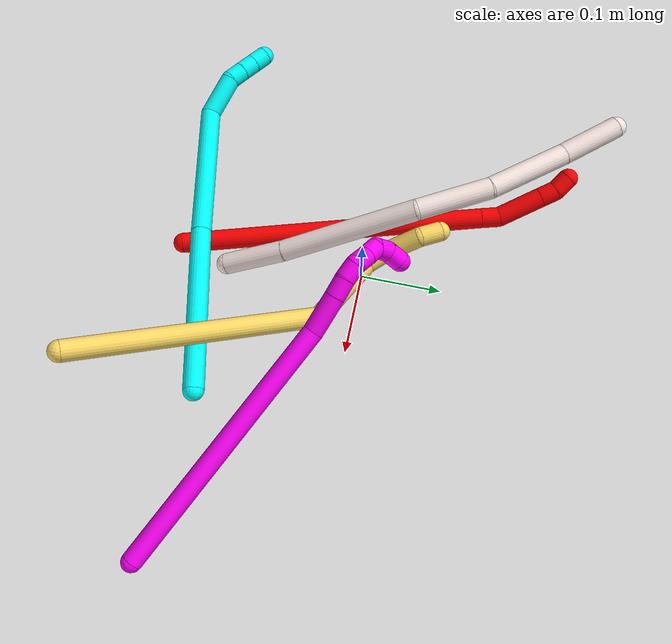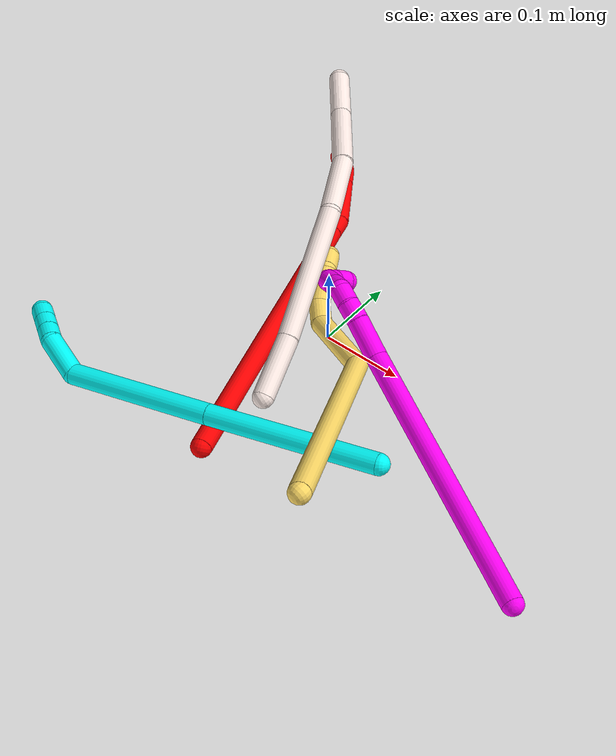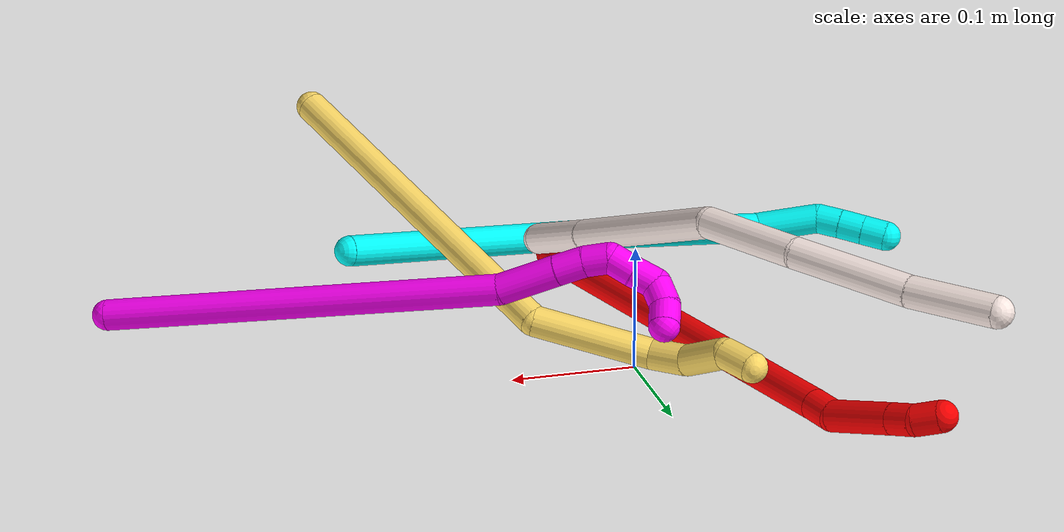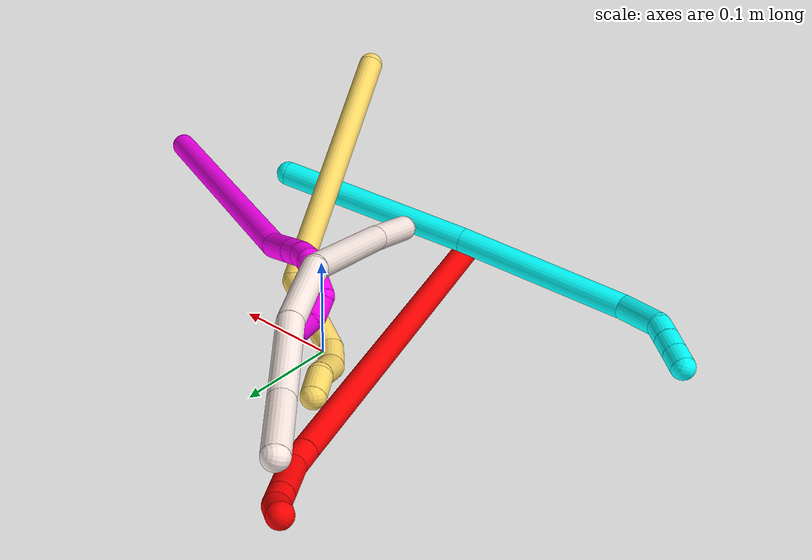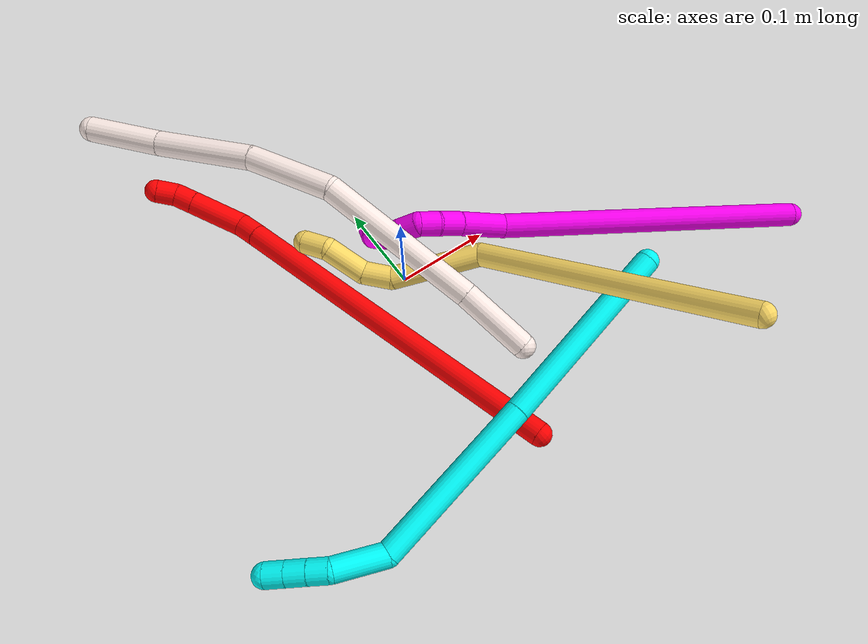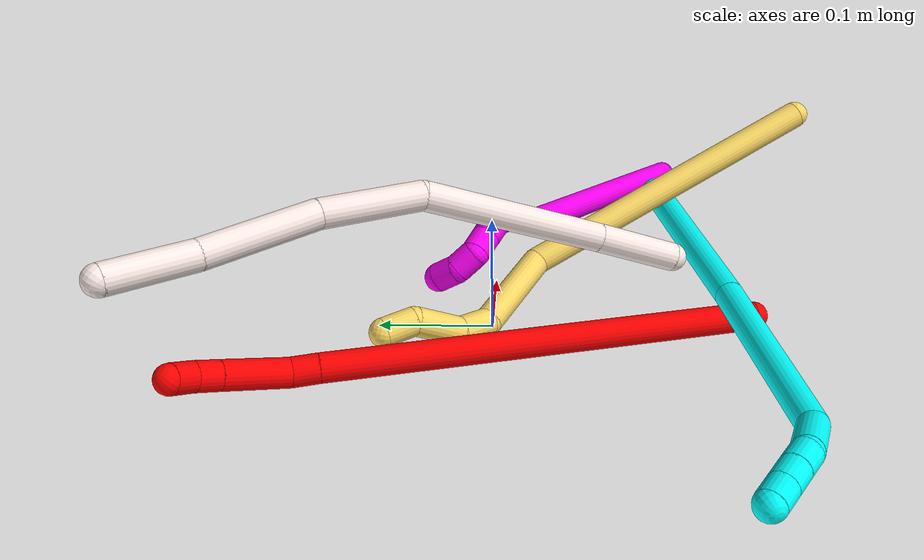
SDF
<sdf version="1.7">
 <world name="default">
  <model name="2">
   <static>0</static>
   <link name="2">
    <collision name="collision-cylinder-e_1_1_4">
     <pose>-0.039215 0.130053 0.130662 -0.783063 -0.209591 0.086792</pose>
     <geometry><cylinder><radius>0.0125</radius><length>0.376956</length></cylinder></geometry>
     <surface>
      <friction><ode><mu>1.16</mu><mu2>1.16</mu2><slip1>0</slip1><slip2>0</slip2></ode></friction>
      <contact><ode><kp>1e+06</kp><kd>1</kd><max_vel>0</max_vel><min_depth>0.001</min_depth></ode></contact>
     </surface>
    </collision>
    <visual name="visual-cylinder-e_1_1_4">
     <pose>-0.039215 0.130053 0.130662 -0.783063 -0.209591 0.086792</pose>
     <geometry><cylinder><radius>0.0125</radius><length>0.376956</length></cylinder></geometry>
     <material><ambient>1 0 0 1</ambient></material>
    </visual>
    <collision name="collision-cylinder-e_2_4_5">
     <pose>-0.080954 0.26849 0.269183 -0.817673 -0.216257 0.093991</pose>
     <geometry><cylinder><radius>0.0125</radius><length>0.023531</length></cylinder></geometry>
     <surface>
      <friction><ode><mu>1.16</mu><mu2>1.16</mu2><slip1>0</slip1><slip2>0</slip2></ode></friction>
      <contact><ode><kp>1e+06</kp><kd>1</kd><max_vel>0</max_vel><min_depth>0.001</min_depth></ode></contact>
     </surface>
    </collision>
    <visual name="visual-cylinder-e_2_4_5">
     <pose>-0.080954 0.26849 0.269183 -0.817673 -0.216257 0.093991</pose>
     <geometry><cylinder><radius>0.0125</radius><length>0.023531</length></cylinder></geometry>
     <material><ambient>1 0 0 1</ambient></material>
    </visual>
    <collision name="collision-cylinder-e_3_5_6">
     <pose>-0.094917 0.28834 0.300797 -0.44973 -0.409168 0.094847</pose>
     <geometry><cylinder><radius>0.0125</radius><length>0.057502</length></cylinder></geometry>
     <surface>
      <friction><ode><mu>1.16</mu><mu2>1.16</mu2><slip1>0</slip1><slip2>0</slip2></ode></friction>
      <contact><ode><kp>1e+06</kp><kd>1</kd><max_vel>0</max_vel><min_depth>0.001</min_depth></ode></contact>
     </surface>
    </collision>
    <visual name="visual-cylinder-e_3_5_6">
     <pose>-0.094917 0.28834 0.300797 -0.44973 -0.409168 0.094847</pose>
     <geometry><cylinder><radius>0.0125</radius><length>0.057502</length></cylinder></geometry>
     <material><ambient>1 0 0 1</ambient></material>
    </visual>
    <collision name="collision-cylinder-e_4_6_7">
     <pose>-0.11047 0.304019 0.333016 -0.461683 -0.410441 0.097766</pose>
     <geometry><cylinder><radius>0.0125</radius><length>0.020621</length></cylinder></geometry>
     <surface>
      <friction><ode><mu>1.16</mu><mu2>1.16</mu2><slip1>0</slip1><slip2>0</slip2></ode></friction>
      <contact><ode><kp>1e+06</kp><kd>1</kd><max_vel>0</max_vel><min_depth>0.001</min_depth></ode></contact>
     </surface>
    </collision>
    <visual name="visual-cylinder-e_4_6_7">
     <pose>-0.11047 0.304019 0.333016 -0.461683 -0.410441 0.097766</pose>
     <geometry><cylinder><radius>0.0125</radius><length>0.020621</length></cylinder></geometry>
     <material><ambient>1 0 0 1</ambient></material>
    </visual>
    <collision name="collision-cylinder-e_5_7_2">
     <pose>-0.121205 0.309784 0.349734 -0.186126 -0.667612 0.06471</pose>
     <geometry><cylinder><radius>0.0125</radius><length>0.021389</length></cylinder></geometry>
     <surface>
      <friction><ode><mu>1.16</mu><mu2>1.16</mu2><slip1>0</slip1><slip2>0</slip2></ode></friction>
      <contact><ode><kp>1e+06</kp><kd>1</kd><max_vel>0</max_vel><min_depth>0.001</min_depth></ode></contact>
     </surface>
    </collision>
    <visual name="visual-cylinder-e_5_7_2">
     <pose>-0.121205 0.309784 0.349734 -0.186126 -0.667612 0.06471</pose>
     <geometry><cylinder><radius>0.0125</radius><length>0.021389</length></cylinder></geometry>
     <material><ambient>1 0 0 1</ambient></material>
    </visual>
    <collision name="collision-sphere-2">
     <pose>-0.127826 0.311338 0.357987 0 -0 0</pose>
     <geometry><sphere><radius>0.0125</radius></sphere></geometry>
     <surface>
      <friction><ode><mu>1.16</mu><mu2>1.16</mu2><slip1>0</slip1><slip2>0</slip2></ode></friction>
      <contact><ode><kp>1e+06</kp><kd>1</kd><max_vel>0</max_vel><min_depth>0.001</min_depth></ode></contact>
     </surface>
    </collision>
    <visual name="visual-sphere-2">
     <pose>-0.127826 0.311338 0.357987 0 -0 0</pose>
     <geometry><sphere><radius>0.0125</radius></sphere></geometry>
     <material><ambient>1 0 0 1</ambient></material>
    </visual>
    <collision name="collision-sphere-7">
     <pose>-0.114584 0.30823 0.34148 0 -0 0</pose>
     <geometry><sphere><radius>0.0125</radius></sphere></geometry>
     <surface>
      <friction><ode><mu>1.16</mu><mu2>1.16</mu2><slip1>0</slip1><slip2>0</slip2></ode></friction>
      <contact><ode><kp>1e+06</kp><kd>1</kd><max_vel>0</max_vel><min_depth>0.001</min_depth></ode></contact>
     </surface>
    </collision>
    <visual name="visual-sphere-7">
     <pose>-0.114584 0.30823 0.34148 0 -0 0</pose>
     <geometry><sphere><radius>0.0125</radius></sphere></geometry>
     <material><ambient>1 0 0 1</ambient></material>
    </visual>
    <collision name="collision-sphere-6">
     <pose>-0.106356 0.299807 0.324552 0 -0 0</pose>
     <geometry><sphere><radius>0.0125</radius></sphere></geometry>
     <surface>
      <friction><ode><mu>1.16</mu><mu2>1.16</mu2><slip1>0</slip1><slip2>0</slip2></ode></friction>
      <contact><ode><kp>1e+06</kp><kd>1</kd><max_vel>0</max_vel><min_depth>0.001</min_depth></ode></contact>
     </surface>
    </collision>
    <visual name="visual-sphere-6">
     <pose>-0.106356 0.299807 0.324552 0 -0 0</pose>
     <geometry><sphere><radius>0.0125</radius></sphere></geometry>
     <material><ambient>1 0 0 1</ambient></material>
    </visual>
    <collision name="collision-sphere-5">
     <pose>-0.083479 0.276873 0.277042 0 -0 0</pose>
     <geometry><sphere><radius>0.0125</radius></sphere></geometry>
     <surface>
      <friction><ode><mu>1.16</mu><mu2>1.16</mu2><slip1>0</slip1><slip2>0</slip2></ode></friction>
      <contact><ode><kp>1e+06</kp><kd>1</kd><max_vel>0</max_vel><min_depth>0.001</min_depth></ode></contact>
     </surface>
    </collision>
    <visual name="visual-sphere-5">
     <pose>-0.083479 0.276873 0.277042 0 -0 0</pose>
     <geometry><sphere><radius>0.0125</radius></sphere></geometry>
     <material><ambient>1 0 0 1</ambient></material>
    </visual>
    <collision name="collision-sphere-1">
     <geometry><sphere><radius>0.0125</radius></sphere></geometry>
     <surface>
      <friction><ode><mu>1.16</mu><mu2>1.16</mu2><slip1>0</slip1><slip2>0</slip2></ode></friction>
      <contact><ode><kp>1e+06</kp><kd>1</kd><max_vel>0</max_vel><min_depth>0.001</min_depth></ode></contact>
     </surface>
    </collision>
    <visual name="visual-sphere-1">
     <geometry><sphere><radius>0.0125</radius></sphere></geometry>
     <material><ambient>1 0 0 1</ambient></material>
    </visual>
    <collision name="collision-sphere-4">
     <pose>-0.078429 0.260106 0.261323 0 -0 0</pose>
     <geometry><sphere><radius>0.0125</radius></sphere></geometry>
     <surface>
      <friction><ode><mu>1.16</mu><mu2>1.16</mu2><slip1>0</slip1><slip2>0</slip2></ode></friction>
      <contact><ode><kp>1e+06</kp><kd>1</kd><max_vel>0</max_vel><min_depth>0.001</min_depth></ode></contact>
     </surface>
    </collision>
    <visual name="visual-sphere-4">
     <pose>-0.078429 0.260106 0.261323 0 -0 0</pose>
     <geometry><sphere><radius>0.0125</radius></sphere></geometry>
     <material><ambient>1 0 0 1</ambient></material>
    </visual>
    <inertial>
     <pose>-0.054031 0.169635 0.174464 0 -0 0</pose>
     <mass>0.5</mass>
     <inertia>
      <ixx>0.004757</ixx>
      <ixy>0</ixy>
      <ixz>0</ixz>
      <iyy>0.003646</iyy>
      <iyz>0</iyz>
      <izz>-0.002131</izz>
     </inertia>
    </inertial>
   </link>
   <pose>0.004732 -0.227502 0.011497 -0.728358 -0.262708 0.072572</pose>
  </model>
  <model name="3">
   <static>0</static>
   <link name="3">
    <collision name="collision-cylinder-e_1_1_4">
     <pose>-0.011237 -0.01058 0.101671 0.103687 -0.109486 -0.005687</pose>
     <geometry><cylinder><radius>0.0125</radius><length>0.205671</length></cylinder></geometry>
     <surface>
      <friction><ode><mu>1.16</mu><mu2>1.16</mu2><slip1>0</slip1><slip2>0</slip2></ode></friction>
      <contact><ode><kp>1e+06</kp><kd>1</kd><max_vel>0</max_vel><min_depth>0.001</min_depth></ode></contact>
     </surface>
    </collision>
    <visual name="visual-cylinder-e_1_1_4">
     <pose>-0.011237 -0.01058 0.101671 0.103687 -0.109486 -0.005687</pose>
     <geometry><cylinder><radius>0.0125</radius><length>0.205671</length></cylinder></geometry>
     <material><ambient>0.003922 1 0.996078 1</ambient></material>
    </visual>
    <collision name="collision-cylinder-e_2_4_5">
     <pose>-0.03199 -0.03312 0.292135 0.13389 -0.105821 -0.007101</pose>
     <geometry><cylinder><radius>0.0125</radius><length>0.1802</length></cylinder></geometry>
     <surface>
      <friction><ode><mu>1.16</mu><mu2>1.16</mu2><slip1>0</slip1><slip2>0</slip2></ode></friction>
      <contact><ode><kp>1e+06</kp><kd>1</kd><max_vel>0</max_vel><min_depth>0.001</min_depth></ode></contact>
     </surface>
    </collision>
    <visual name="visual-cylinder-e_2_4_5">
     <pose>-0.03199 -0.03312 0.292135 0.13389 -0.105821 -0.007101</pose>
     <geometry><cylinder><radius>0.0125</radius><length>0.1802</length></cylinder></geometry>
     <material><ambient>0.003922 1 0.996078 1</ambient></material>
    </visual>
    <collision name="collision-cylinder-e_3_5_6">
     <pose>-0.056341 -0.055739 0.400356 0.501825 -0.589955 -0.155444</pose>
     <geometry><cylinder><radius>0.0125</radius><length>0.053332</length></cylinder></geometry>
     <surface>
      <friction><ode><mu>1.16</mu><mu2>1.16</mu2><slip1>0</slip1><slip2>0</slip2></ode></friction>
      <contact><ode><kp>1e+06</kp><kd>1</kd><max_vel>0</max_vel><min_depth>0.001</min_depth></ode></contact>
     </surface>
    </collision>
    <visual name="visual-cylinder-e_3_5_6">
     <pose>-0.056341 -0.055739 0.400356 0.501825 -0.589955 -0.155444</pose>
     <geometry><cylinder><radius>0.0125</radius><length>0.053332</length></cylinder></geometry>
     <material><ambient>0.003922 1 0.996078 1</ambient></material>
    </visual>
    <collision name="collision-cylinder-e_4_6_7">
     <pose>-0.074827 -0.073808 0.425707 0.896368 -0.367305 -0.178147</pose>
     <geometry><cylinder><radius>0.0125</radius><length>0.020331</length></cylinder></geometry>
     <surface>
      <friction><ode><mu>1.16</mu><mu2>1.16</mu2><slip1>0</slip1><slip2>0</slip2></ode></friction>
      <contact><ode><kp>1e+06</kp><kd>1</kd><max_vel>0</max_vel><min_depth>0.001</min_depth></ode></contact>
     </surface>
    </collision>
    <visual name="visual-cylinder-e_4_6_7">
     <pose>-0.074827 -0.073808 0.425707 0.896368 -0.367305 -0.178147</pose>
     <geometry><cylinder><radius>0.0125</radius><length>0.020331</length></cylinder></geometry>
     <material><ambient>0.003922 1 0.996078 1</ambient></material>
    </visual>
    <collision name="collision-cylinder-e_5_7_8">
     <pose>-0.081858 -0.088764 0.437582 0.903092 -0.338258 -0.165248</pose>
     <geometry><cylinder><radius>0.0125</radius><length>0.020373</length></cylinder></geometry>
     <surface>
      <friction><ode><mu>1.16</mu><mu2>1.16</mu2><slip1>0</slip1><slip2>0</slip2></ode></friction>
      <contact><ode><kp>1e+06</kp><kd>1</kd><max_vel>0</max_vel><min_depth>0.001</min_depth></ode></contact>
     </surface>
    </collision>
    <visual name="visual-cylinder-e_5_7_8">
     <pose>-0.081858 -0.088764 0.437582 0.903092 -0.338258 -0.165248</pose>
     <geometry><cylinder><radius>0.0125</radius><length>0.020373</length></cylinder></geometry>
     <material><ambient>0.003922 1 0.996078 1</ambient></material>
    </visual>
    <collision name="collision-cylinder-e_6_8_2">
     <pose>-0.088617 -0.103747 0.449379 0.904483 -0.343023 -0.167906</pose>
     <geometry><cylinder><radius>0.0125</radius><length>0.020093</length></cylinder></geometry>
     <surface>
      <friction><ode><mu>1.16</mu><mu2>1.16</mu2><slip1>0</slip1><slip2>0</slip2></ode></friction>
      <contact><ode><kp>1e+06</kp><kd>1</kd><max_vel>0</max_vel><min_depth>0.001</min_depth></ode></contact>
     </surface>
    </collision>
    <visual name="visual-cylinder-e_6_8_2">
     <pose>-0.088617 -0.103747 0.449379 0.904483 -0.343023 -0.167906</pose>
     <geometry><cylinder><radius>0.0125</radius><length>0.020093</length></cylinder></geometry>
     <material><ambient>0.003922 1 0.996078 1</ambient></material>
    </visual>
    <collision name="collision-sphere-2">
     <pose>-0.091996 -0.111185 0.455227 0 -0 0</pose>
     <geometry><sphere><radius>0.0125</radius></sphere></geometry>
     <surface>
      <friction><ode><mu>1.16</mu><mu2>1.16</mu2><slip1>0</slip1><slip2>0</slip2></ode></friction>
      <contact><ode><kp>1e+06</kp><kd>1</kd><max_vel>0</max_vel><min_depth>0.001</min_depth></ode></contact>
     </surface>
    </collision>
    <visual name="visual-sphere-2">
     <pose>-0.091996 -0.111185 0.455227 0 -0 0</pose>
     <geometry><sphere><radius>0.0125</radius></sphere></geometry>
     <material><ambient>0.003922 1 0.996078 1</ambient></material>
    </visual>
    <collision name="collision-sphere-4">
     <pose>-0.022473 -0.02116 0.203341 0 -0 0</pose>
     <geometry><sphere><radius>0.0125</radius></sphere></geometry>
     <surface>
      <friction><ode><mu>1.16</mu><mu2>1.16</mu2><slip1>0</slip1><slip2>0</slip2></ode></friction>
      <contact><ode><kp>1e+06</kp><kd>1</kd><max_vel>0</max_vel><min_depth>0.001</min_depth></ode></contact>
     </surface>
    </collision>
    <visual name="visual-sphere-4">
     <pose>-0.022473 -0.02116 0.203341 0 -0 0</pose>
     <geometry><sphere><radius>0.0125</radius></sphere></geometry>
     <material><ambient>0.003922 1 0.996078 1</ambient></material>
    </visual>
    <collision name="collision-sphere-1">
     <geometry><sphere><radius>0.0125</radius></sphere></geometry>
     <surface>
      <friction><ode><mu>1.16</mu><mu2>1.16</mu2><slip1>0</slip1><slip2>0</slip2></ode></friction>
      <contact><ode><kp>1e+06</kp><kd>1</kd><max_vel>0</max_vel><min_depth>0.001</min_depth></ode></contact>
     </surface>
    </collision>
    <visual name="visual-sphere-1">
     <geometry><sphere><radius>0.0125</radius></sphere></geometry>
     <material><ambient>0.003922 1 0.996078 1</ambient></material>
    </visual>
    <collision name="collision-sphere-8">
     <pose>-0.085238 -0.09631 0.443532 0 -0 0</pose>
     <geometry><sphere><radius>0.0125</radius></sphere></geometry>
     <surface>
      <friction><ode><mu>1.16</mu><mu2>1.16</mu2><slip1>0</slip1><slip2>0</slip2></ode></friction>
      <contact><ode><kp>1e+06</kp><kd>1</kd><max_vel>0</max_vel><min_depth>0.001</min_depth></ode></contact>
     </surface>
    </collision>
    <visual name="visual-sphere-8">
     <pose>-0.085238 -0.09631 0.443532 0 -0 0</pose>
     <geometry><sphere><radius>0.0125</radius></sphere></geometry>
     <material><ambient>0.003922 1 0.996078 1</ambient></material>
    </visual>
    <collision name="collision-sphere-5">
     <pose>-0.041506 -0.04508 0.380929 0 -0 0</pose>
     <geometry><sphere><radius>0.0125</radius></sphere></geometry>
     <surface>
      <friction><ode><mu>1.16</mu><mu2>1.16</mu2><slip1>0</slip1><slip2>0</slip2></ode></friction>
      <contact><ode><kp>1e+06</kp><kd>1</kd><max_vel>0</max_vel><min_depth>0.001</min_depth></ode></contact>
     </surface>
    </collision>
    <visual name="visual-sphere-5">
     <pose>-0.041506 -0.04508 0.380929 0 -0 0</pose>
     <geometry><sphere><radius>0.0125</radius></sphere></geometry>
     <material><ambient>0.003922 1 0.996078 1</ambient></material>
    </visual>
    <collision name="collision-sphere-6">
     <pose>-0.071176 -0.066398 0.419783 0 -0 0</pose>
     <geometry><sphere><radius>0.0125</radius></sphere></geometry>
     <surface>
      <friction><ode><mu>1.16</mu><mu2>1.16</mu2><slip1>0</slip1><slip2>0</slip2></ode></friction>
      <contact><ode><kp>1e+06</kp><kd>1</kd><max_vel>0</max_vel><min_depth>0.001</min_depth></ode></contact>
     </surface>
    </collision>
    <visual name="visual-sphere-6">
     <pose>-0.071176 -0.066398 0.419783 0 -0 0</pose>
     <geometry><sphere><radius>0.0125</radius></sphere></geometry>
     <material><ambient>0.003922 1 0.996078 1</ambient></material>
    </visual>
    <collision name="collision-sphere-7">
     <pose>-0.078477 -0.081219 0.431632 0 -0 0</pose>
     <geometry><sphere><radius>0.0125</radius></sphere></geometry>
     <surface>
      <friction><ode><mu>1.16</mu><mu2>1.16</mu2><slip1>0</slip1><slip2>0</slip2></ode></friction>
      <contact><ode><kp>1e+06</kp><kd>1</kd><max_vel>0</max_vel><min_depth>0.001</min_depth></ode></contact>
     </surface>
    </collision>
    <visual name="visual-sphere-7">
     <pose>-0.078477 -0.081219 0.431632 0 -0 0</pose>
     <geometry><sphere><radius>0.0125</radius></sphere></geometry>
     <material><ambient>0.003922 1 0.996078 1</ambient></material>
    </visual>
    <inertial>
     <pose>-0.0321 -0.033021 0.243009 0 -0 0</pose>
     <mass>0.5</mass>
     <inertia>
      <ixx>0.001219</ixx>
      <ixy>0</ixy>
      <ixz>0</ixz>
      <iyy>0.001217</iyy>
      <iyz>0</iyz>
      <izz>0.000328</izz>
     </inertia>
    </inertial>
   </link>
   <pose>0.193296 -0.156146 0.059864 1.90294 1.04598 -0.904106</pose>
  </model>
  <model name="5">
   <static>0</static>
   <link name="5">
    <collision name="collision-cylinder-e_1_1_4">
     <pose>-0.093417 0.050242 -0.105082 -2.6956 -0.675978 1.99563</pose>
     <geometry><cylinder><radius>0.0125</radius><length>0.298618</length></cylinder></geometry>
     <surface>
      <friction><ode><mu>1.16</mu><mu2>1.16</mu2><slip1>0</slip1><slip2>0</slip2></ode></friction>
      <contact><ode><kp>1e+06</kp><kd>1</kd><max_vel>0</max_vel><min_depth>0.001</min_depth></ode></contact>
     </surface>
    </collision>
    <visual name="visual-cylinder-e_1_1_4">
     <pose>-0.093417 0.050242 -0.105082 -2.6956 -0.675978 1.99563</pose>
     <geometry><cylinder><radius>0.0125</radius><length>0.298618</length></cylinder></geometry>
     <material><ambient>1 0.858824 0.4 1</ambient></material>
    </visual>
    <collision name="collision-cylinder-e_2_4_5">
     <pose>-0.213155 0.139263 -0.223135 -1.89357 -0.571928 0.775412</pose>
     <geometry><cylinder><radius>0.0125</radius><length>0.097259</length></cylinder></geometry>
     <surface>
      <friction><ode><mu>1.16</mu><mu2>1.16</mu2><slip1>0</slip1><slip2>0</slip2></ode></friction>
      <contact><ode><kp>1e+06</kp><kd>1</kd><max_vel>0</max_vel><min_depth>0.001</min_depth></ode></contact>
     </surface>
    </collision>
    <visual name="visual-cylinder-e_2_4_5">
     <pose>-0.213155 0.139263 -0.223135 -1.89357 -0.571928 0.775412</pose>
     <geometry><cylinder><radius>0.0125</radius><length>0.097259</length></cylinder></geometry>
     <material><ambient>1 0.858824 0.4 1</ambient></material>
    </visual>
    <collision name="collision-cylinder-e_3_5_6">
     <pose>-0.244301 0.189296 -0.246073 -2.29563 -0.310574 0.669363</pose>
     <geometry><cylinder><radius>0.0125</radius><length>0.031577</length></cylinder></geometry>
     <surface>
      <friction><ode><mu>1.16</mu><mu2>1.16</mu2><slip1>0</slip1><slip2>0</slip2></ode></friction>
      <contact><ode><kp>1e+06</kp><kd>1</kd><max_vel>0</max_vel><min_depth>0.001</min_depth></ode></contact>
     </surface>
    </collision>
    <visual name="visual-cylinder-e_3_5_6">
     <pose>-0.244301 0.189296 -0.246073 -2.29563 -0.310574 0.669363</pose>
     <geometry><cylinder><radius>0.0125</radius><length>0.031577</length></cylinder></geometry>
     <material><ambient>1 0.858824 0.4 1</ambient></material>
    </visual>
    <collision name="collision-cylinder-e_4_6_7">
     <pose>-0.246974 0.213714 -0.27397 -2.50826 0.096421 -0.29237</pose>
     <geometry><cylinder><radius>0.0125</radius><length>0.044695</length></cylinder></geometry>
     <surface>
      <friction><ode><mu>1.16</mu><mu2>1.16</mu2><slip1>0</slip1><slip2>0</slip2></ode></friction>
      <contact><ode><kp>1e+06</kp><kd>1</kd><max_vel>0</max_vel><min_depth>0.001</min_depth></ode></contact>
     </surface>
    </collision>
    <visual name="visual-cylinder-e_4_6_7">
     <pose>-0.246974 0.213714 -0.27397 -2.50826 0.096421 -0.29237</pose>
     <geometry><cylinder><radius>0.0125</radius><length>0.044695</length></cylinder></geometry>
     <material><ambient>1 0.858824 0.4 1</ambient></material>
    </visual>
    <collision name="collision-cylinder-e_5_7_2">
     <pose>-0.251092 0.233772 -0.302249 -2.55404 -0.466972 1.33243</pose>
     <geometry><cylinder><radius>0.0125</radius><length>0.02785</length></cylinder></geometry>
     <surface>
      <friction><ode><mu>1.16</mu><mu2>1.16</mu2><slip1>0</slip1><slip2>0</slip2></ode></friction>
      <contact><ode><kp>1e+06</kp><kd>1</kd><max_vel>0</max_vel><min_depth>0.001</min_depth></ode></contact>
     </surface>
    </collision>
    <visual name="visual-cylinder-e_5_7_2">
     <pose>-0.251092 0.233772 -0.302249 -2.55404 -0.466972 1.33243</pose>
     <geometry><cylinder><radius>0.0125</radius><length>0.02785</length></cylinder></geometry>
     <material><ambient>1 0.858824 0.4 1</ambient></material>
    </visual>
    <collision name="collision-sphere-2">
     <pose>-0.25736 0.240664 -0.312598 0 -0 0</pose>
     <geometry><sphere><radius>0.0125</radius></sphere></geometry>
     <surface>
      <friction><ode><mu>1.16</mu><mu2>1.16</mu2><slip1>0</slip1><slip2>0</slip2></ode></friction>
      <contact><ode><kp>1e+06</kp><kd>1</kd><max_vel>0</max_vel><min_depth>0.001</min_depth></ode></contact>
     </surface>
    </collision>
    <visual name="visual-sphere-2">
     <pose>-0.25736 0.240664 -0.312598 0 -0 0</pose>
     <geometry><sphere><radius>0.0125</radius></sphere></geometry>
     <material><ambient>1 0.858824 0.4 1</ambient></material>
    </visual>
    <collision name="collision-sphere-7">
     <pose>-0.244823 0.226879 -0.2919 0 -0 0</pose>
     <geometry><sphere><radius>0.0125</radius></sphere></geometry>
     <surface>
      <friction><ode><mu>1.16</mu><mu2>1.16</mu2><slip1>0</slip1><slip2>0</slip2></ode></friction>
      <contact><ode><kp>1e+06</kp><kd>1</kd><max_vel>0</max_vel><min_depth>0.001</min_depth></ode></contact>
     </surface>
    </collision>
    <visual name="visual-sphere-7">
     <pose>-0.244823 0.226879 -0.2919 0 -0 0</pose>
     <geometry><sphere><radius>0.0125</radius></sphere></geometry>
     <material><ambient>1 0.858824 0.4 1</ambient></material>
    </visual>
    <collision name="collision-sphere-6">
     <pose>-0.249126 0.20055 -0.25604 0 -0 0</pose>
     <geometry><sphere><radius>0.0125</radius></sphere></geometry>
     <surface>
      <friction><ode><mu>1.16</mu><mu2>1.16</mu2><slip1>0</slip1><slip2>0</slip2></ode></friction>
      <contact><ode><kp>1e+06</kp><kd>1</kd><max_vel>0</max_vel><min_depth>0.001</min_depth></ode></contact>
     </surface>
    </collision>
    <visual name="visual-sphere-6">
     <pose>-0.249126 0.20055 -0.25604 0 -0 0</pose>
     <geometry><sphere><radius>0.0125</radius></sphere></geometry>
     <material><ambient>1 0.858824 0.4 1</ambient></material>
    </visual>
    <collision name="collision-sphere-5">
     <pose>-0.239476 0.178042 -0.236106 0 -0 0</pose>
     <geometry><sphere><radius>0.0125</radius></sphere></geometry>
     <surface>
      <friction><ode><mu>1.16</mu><mu2>1.16</mu2><slip1>0</slip1><slip2>0</slip2></ode></friction>
      <contact><ode><kp>1e+06</kp><kd>1</kd><max_vel>0</max_vel><min_depth>0.001</min_depth></ode></contact>
     </surface>
    </collision>
    <visual name="visual-sphere-5">
     <pose>-0.239476 0.178042 -0.236106 0 -0 0</pose>
     <geometry><sphere><radius>0.0125</radius></sphere></geometry>
     <material><ambient>1 0.858824 0.4 1</ambient></material>
    </visual>
    <collision name="collision-sphere-1">
     <geometry><sphere><radius>0.0125</radius></sphere></geometry>
     <surface>
      <friction><ode><mu>1.16</mu><mu2>1.16</mu2><slip1>0</slip1><slip2>0</slip2></ode></friction>
      <contact><ode><kp>1e+06</kp><kd>1</kd><max_vel>0</max_vel><min_depth>0.001</min_depth></ode></contact>
     </surface>
    </collision>
    <visual name="visual-sphere-1">
     <geometry><sphere><radius>0.0125</radius></sphere></geometry>
     <material><ambient>1 0.858824 0.4 1</ambient></material>
    </visual>
    <collision name="collision-sphere-4">
     <pose>-0.186834 0.100484 -0.210165 0 -0 0</pose>
     <geometry><sphere><radius>0.0125</radius></sphere></geometry>
     <surface>
      <friction><ode><mu>1.16</mu><mu2>1.16</mu2><slip1>0</slip1><slip2>0</slip2></ode></friction>
      <contact><ode><kp>1e+06</kp><kd>1</kd><max_vel>0</max_vel><min_depth>0.001</min_depth></ode></contact>
     </surface>
    </collision>
    <visual name="visual-sphere-4">
     <pose>-0.186834 0.100484 -0.210165 0 -0 0</pose>
     <geometry><sphere><radius>0.0125</radius></sphere></geometry>
     <material><ambient>1 0.858824 0.4 1</ambient></material>
    </visual>
    <inertial>
     <pose>-0.148746 0.101175 -0.163029 0 -0 0</pose>
     <mass>0.5</mass>
     <inertia>
      <ixx>0.000958</ixx>
      <ixy>0</ixy>
      <ixz>0</ixz>
      <iyy>0.003034</iyy>
      <iyz>0</iyz>
      <izz>0.000592</izz>
     </inertia>
    </inertial>
   </link>
   <pose>0.194545 -0.2882 0.139548 2.10437 -1.2115 -0.631597</pose>
  </model>
  <model name="10">
   <static>0</static>
   <link name="10">
    <collision name="collision-cylinder-e_1_1_4">
     <pose>-0.098972 0.030396 -0.126382 -2.90556 -0.650761 2.46568</pose>
     <geometry><cylinder><radius>0.0125</radius><length>0.326752</length></cylinder></geometry>
     <surface>
      <friction><ode><mu>1.16</mu><mu2>1.16</mu2><slip1>0</slip1><slip2>0</slip2></ode></friction>
      <contact><ode><kp>1e+06</kp><kd>1</kd><max_vel>0</max_vel><min_depth>0.001</min_depth></ode></contact>
     </surface>
    </collision>
    <visual name="visual-cylinder-e_1_1_4">
     <pose>-0.098972 0.030396 -0.126382 -2.90556 -0.650761 2.46568</pose>
     <geometry><cylinder><radius>0.0125</radius><length>0.326752</length></cylinder></geometry>
     <material><ambient>1 0 0.964706 1</ambient></material>
    </visual>
    <collision name="collision-cylinder-e_2_4_5">
     <pose>-0.216409 0.067126 -0.267143 -2.72674 -0.865753 2.28688</pose>
     <geometry><cylinder><radius>0.0125</radius><length>0.048491</length></cylinder></geometry>
     <surface>
      <friction><ode><mu>1.16</mu><mu2>1.16</mu2><slip1>0</slip1><slip2>0</slip2></ode></friction>
      <contact><ode><kp>1e+06</kp><kd>1</kd><max_vel>0</max_vel><min_depth>0.001</min_depth></ode></contact>
     </surface>
    </collision>
    <visual name="visual-cylinder-e_2_4_5">
     <pose>-0.216409 0.067126 -0.267143 -2.72674 -0.865753 2.28688</pose>
     <geometry><cylinder><radius>0.0125</radius><length>0.048491</length></cylinder></geometry>
     <material><ambient>1 0 0.964706 1</ambient></material>
    </visual>
    <collision name="collision-cylinder-e_3_5_6">
     <pose>-0.243879 0.076004 -0.288628 -2.79767 -0.873263 2.42903</pose>
     <geometry><cylinder><radius>0.0125</radius><length>0.023498</length></cylinder></geometry>
     <surface>
      <friction><ode><mu>1.16</mu><mu2>1.16</mu2><slip1>0</slip1><slip2>0</slip2></ode></friction>
      <contact><ode><kp>1e+06</kp><kd>1</kd><max_vel>0</max_vel><min_depth>0.001</min_depth></ode></contact>
     </surface>
    </collision>
    <visual name="visual-cylinder-e_3_5_6">
     <pose>-0.243879 0.076004 -0.288628 -2.79767 -0.873263 2.42903</pose>
     <geometry><cylinder><radius>0.0125</radius><length>0.023498</length></cylinder></geometry>
     <material><ambient>1 0 0.964706 1</ambient></material>
    </visual>
    <collision name="collision-cylinder-e_4_6_7">
     <pose>-0.259668 0.08062 -0.303209 -2.87134 -0.71858 2.44698</pose>
     <geometry><cylinder><radius>0.0125</radius><length>0.020612</length></cylinder></geometry>
     <surface>
      <friction><ode><mu>1.16</mu><mu2>1.16</mu2><slip1>0</slip1><slip2>0</slip2></ode></friction>
      <contact><ode><kp>1e+06</kp><kd>1</kd><max_vel>0</max_vel><min_depth>0.001</min_depth></ode></contact>
     </surface>
    </collision>
    <visual name="visual-cylinder-e_4_6_7">
     <pose>-0.259668 0.08062 -0.303209 -2.87134 -0.71858 2.44698</pose>
     <geometry><cylinder><radius>0.0125</radius><length>0.020612</length></cylinder></geometry>
     <material><ambient>1 0 0.964706 1</ambient></material>
    </visual>
    <collision name="collision-cylinder-e_5_7_8">
     <pose>-0.267681 0.081397 -0.320837 3.01485 -0.119516 -1.51195</pose>
     <geometry><cylinder><radius>0.0125</radius><length>0.020615</length></cylinder></geometry>
     <surface>
      <friction><ode><mu>1.16</mu><mu2>1.16</mu2><slip1>0</slip1><slip2>0</slip2></ode></friction>
      <contact><ode><kp>1e+06</kp><kd>1</kd><max_vel>0</max_vel><min_depth>0.001</min_depth></ode></contact>
     </surface>
    </collision>
    <visual name="visual-cylinder-e_5_7_8">
     <pose>-0.267681 0.081397 -0.320837 3.01485 -0.119516 -1.51195</pose>
     <geometry><cylinder><radius>0.0125</radius><length>0.020615</length></cylinder></geometry>
     <material><ambient>1 0 0.964706 1</ambient></material>
    </visual>
    <collision name="collision-cylinder-e_6_8_9">
     <pose>-0.270633 0.078608 -0.340726 2.9892 -0.173143 -1.69865</pose>
     <geometry><cylinder><radius>0.0125</radius><length>0.020003</length></cylinder></geometry>
     <surface>
      <friction><ode><mu>1.16</mu><mu2>1.16</mu2><slip1>0</slip1><slip2>0</slip2></ode></friction>
      <contact><ode><kp>1e+06</kp><kd>1</kd><max_vel>0</max_vel><min_depth>0.001</min_depth></ode></contact>
     </surface>
    </collision>
    <visual name="visual-cylinder-e_6_8_9">
     <pose>-0.270633 0.078608 -0.340726 2.9892 -0.173143 -1.69865</pose>
     <geometry><cylinder><radius>0.0125</radius><length>0.020003</length></cylinder></geometry>
     <material><ambient>1 0 0.964706 1</ambient></material>
    </visual>
    <collision name="collision-cylinder-e_7_9_10">
     <pose>-0.267296 0.078525 -0.358985 -2.97727 0.529984 -2.55235</pose>
     <geometry><cylinder><radius>0.0125</radius><length>0.020021</length></cylinder></geometry>
     <surface>
      <friction><ode><mu>1.16</mu><mu2>1.16</mu2><slip1>0</slip1><slip2>0</slip2></ode></friction>
      <contact><ode><kp>1e+06</kp><kd>1</kd><max_vel>0</max_vel><min_depth>0.001</min_depth></ode></contact>
     </surface>
    </collision>
    <visual name="visual-cylinder-e_7_9_10">
     <pose>-0.267296 0.078525 -0.358985 -2.97727 0.529984 -2.55235</pose>
     <geometry><cylinder><radius>0.0125</radius><length>0.020021</length></cylinder></geometry>
     <material><ambient>1 0 0.964706 1</ambient></material>
    </visual>
    <collision name="collision-cylinder-e_8_10_2">
     <pose>-0.254784 0.083888 -0.372887 -2.50842 0.840265 -1.87609</pose>
     <geometry><cylinder><radius>0.0125</radius><length>0.020008</length></cylinder></geometry>
     <surface>
      <friction><ode><mu>1.16</mu><mu2>1.16</mu2><slip1>0</slip1><slip2>0</slip2></ode></friction>
      <contact><ode><kp>1e+06</kp><kd>1</kd><max_vel>0</max_vel><min_depth>0.001</min_depth></ode></contact>
     </surface>
    </collision>
    <visual name="visual-cylinder-e_8_10_2">
     <pose>-0.254784 0.083888 -0.372887 -2.50842 0.840265 -1.87609</pose>
     <geometry><cylinder><radius>0.0125</radius><length>0.020008</length></cylinder></geometry>
     <material><ambient>1 0 0.964706 1</ambient></material>
    </visual>
    <collision name="collision-sphere-2">
     <pose>-0.247333 0.087838 -0.378269 0 -0 0</pose>
     <geometry><sphere><radius>0.0125</radius></sphere></geometry>
     <surface>
      <friction><ode><mu>1.16</mu><mu2>1.16</mu2><slip1>0</slip1><slip2>0</slip2></ode></friction>
      <contact><ode><kp>1e+06</kp><kd>1</kd><max_vel>0</max_vel><min_depth>0.001</min_depth></ode></contact>
     </surface>
    </collision>
    <visual name="visual-sphere-2">
     <pose>-0.247333 0.087838 -0.378269 0 -0 0</pose>
     <geometry><sphere><radius>0.0125</radius></sphere></geometry>
     <material><ambient>1 0 0.964706 1</ambient></material>
    </visual>
    <collision name="collision-sphere-10">
     <pose>-0.262236 0.079938 -0.367506 0 -0 0</pose>
     <geometry><sphere><radius>0.0125</radius></sphere></geometry>
     <surface>
      <friction><ode><mu>1.16</mu><mu2>1.16</mu2><slip1>0</slip1><slip2>0</slip2></ode></friction>
      <contact><ode><kp>1e+06</kp><kd>1</kd><max_vel>0</max_vel><min_depth>0.001</min_depth></ode></contact>
     </surface>
    </collision>
    <visual name="visual-sphere-10">
     <pose>-0.262236 0.079938 -0.367506 0 -0 0</pose>
     <geometry><sphere><radius>0.0125</radius></sphere></geometry>
     <material><ambient>1 0 0.964706 1</ambient></material>
    </visual>
    <collision name="collision-sphere-9">
     <pose>-0.272356 0.077112 -0.350464 0 -0 0</pose>
     <geometry><sphere><radius>0.0125</radius></sphere></geometry>
     <surface>
      <friction><ode><mu>1.16</mu><mu2>1.16</mu2><slip1>0</slip1><slip2>0</slip2></ode></friction>
      <contact><ode><kp>1e+06</kp><kd>1</kd><max_vel>0</max_vel><min_depth>0.001</min_depth></ode></contact>
     </surface>
    </collision>
    <visual name="visual-sphere-9">
     <pose>-0.272356 0.077112 -0.350464 0 -0 0</pose>
     <geometry><sphere><radius>0.0125</radius></sphere></geometry>
     <material><ambient>1 0 0.964706 1</ambient></material>
    </visual>
    <collision name="collision-sphere-4">
     <pose>-0.197944 0.060793 -0.252763 0 -0 0</pose>
     <geometry><sphere><radius>0.0125</radius></sphere></geometry>
     <surface>
      <friction><ode><mu>1.16</mu><mu2>1.16</mu2><slip1>0</slip1><slip2>0</slip2></ode></friction>
      <contact><ode><kp>1e+06</kp><kd>1</kd><max_vel>0</max_vel><min_depth>0.001</min_depth></ode></contact>
     </surface>
    </collision>
    <visual name="visual-sphere-4">
     <pose>-0.197944 0.060793 -0.252763 0 -0 0</pose>
     <geometry><sphere><radius>0.0125</radius></sphere></geometry>
     <material><ambient>1 0 0.964706 1</ambient></material>
    </visual>
    <collision name="collision-sphere-1">
     <geometry><sphere><radius>0.0125</radius></sphere></geometry>
     <surface>
      <friction><ode><mu>1.16</mu><mu2>1.16</mu2><slip1>0</slip1><slip2>0</slip2></ode></friction>
      <contact><ode><kp>1e+06</kp><kd>1</kd><max_vel>0</max_vel><min_depth>0.001</min_depth></ode></contact>
     </surface>
    </collision>
    <visual name="visual-sphere-1">
     <geometry><sphere><radius>0.0125</radius></sphere></geometry>
     <material><ambient>1 0 0.964706 1</ambient></material>
    </visual>
    <collision name="collision-sphere-8">
     <pose>-0.26891 0.080103 -0.330988 0 -0 0</pose>
     <geometry><sphere><radius>0.0125</radius></sphere></geometry>
     <surface>
      <friction><ode><mu>1.16</mu><mu2>1.16</mu2><slip1>0</slip1><slip2>0</slip2></ode></friction>
      <contact><ode><kp>1e+06</kp><kd>1</kd><max_vel>0</max_vel><min_depth>0.001</min_depth></ode></contact>
     </surface>
    </collision>
    <visual name="visual-sphere-8">
     <pose>-0.26891 0.080103 -0.330988 0 -0 0</pose>
     <geometry><sphere><radius>0.0125</radius></sphere></geometry>
     <material><ambient>1 0 0.964706 1</ambient></material>
    </visual>
    <collision name="collision-sphere-5">
     <pose>-0.234874 0.073459 -0.281523 0 -0 0</pose>
     <geometry><sphere><radius>0.0125</radius></sphere></geometry>
     <surface>
      <friction><ode><mu>1.16</mu><mu2>1.16</mu2><slip1>0</slip1><slip2>0</slip2></ode></friction>
      <contact><ode><kp>1e+06</kp><kd>1</kd><max_vel>0</max_vel><min_depth>0.001</min_depth></ode></contact>
     </surface>
    </collision>
    <visual name="visual-sphere-5">
     <pose>-0.234874 0.073459 -0.281523 0 -0 0</pose>
     <geometry><sphere><radius>0.0125</radius></sphere></geometry>
     <material><ambient>1 0 0.964706 1</ambient></material>
    </visual>
    <collision name="collision-sphere-6">
     <pose>-0.252883 0.078548 -0.295733 0 -0 0</pose>
     <geometry><sphere><radius>0.0125</radius></sphere></geometry>
     <surface>
      <friction><ode><mu>1.16</mu><mu2>1.16</mu2><slip1>0</slip1><slip2>0</slip2></ode></friction>
      <contact><ode><kp>1e+06</kp><kd>1</kd><max_vel>0</max_vel><min_depth>0.001</min_depth></ode></contact>
     </surface>
    </collision>
    <visual name="visual-sphere-6">
     <pose>-0.252883 0.078548 -0.295733 0 -0 0</pose>
     <geometry><sphere><radius>0.0125</radius></sphere></geometry>
     <material><ambient>1 0 0.964706 1</ambient></material>
    </visual>
    <collision name="collision-sphere-7">
     <pose>-0.266452 0.082691 -0.310685 0 -0 0</pose>
     <geometry><sphere><radius>0.0125</radius></sphere></geometry>
     <surface>
      <friction><ode><mu>1.16</mu><mu2>1.16</mu2><slip1>0</slip1><slip2>0</slip2></ode></friction>
      <contact><ode><kp>1e+06</kp><kd>1</kd><max_vel>0</max_vel><min_depth>0.001</min_depth></ode></contact>
     </surface>
    </collision>
    <visual name="visual-sphere-7">
     <pose>-0.266452 0.082691 -0.310685 0 -0 0</pose>
     <geometry><sphere><radius>0.0125</radius></sphere></geometry>
     <material><ambient>1 0 0.964706 1</ambient></material>
    </visual>
    <inertial>
     <pose>-0.150594 0.046272 -0.190718 0 -0 0</pose>
     <mass>0.5</mass>
     <inertia>
      <ixx>-0.000384</ixx>
      <ixy>0</ixy>
      <ixz>0</ixz>
      <iyy>0.003951</iyy>
      <iyz>0</iyz>
      <izz>0.001202</izz>
     </inertia>
    </inertial>
   </link>
   <pose>0.387535 -0.183937 0.013994 0.892946 0.724866 0.34411</pose>
  </model>
  <model name="11">
   <static>0</static>
   <link name="11">
    <collision name="collision-cylinder-e_1_1_4">
     <pose>-0.016059 0.01757 0.0286 -0.55091 -0.446245 0.128087</pose>
     <geometry><cylinder><radius>0.0125</radius><length>0.074419</length></cylinder></geometry>
     <surface>
      <friction><ode><mu>1.16</mu><mu2>1.16</mu2><slip1>0</slip1><slip2>0</slip2></ode></friction>
      <contact><ode><kp>1e+06</kp><kd>1</kd><max_vel>0</max_vel><min_depth>0.001</min_depth></ode></contact>
     </surface>
    </collision>
    <visual name="visual-cylinder-e_1_1_4">
     <pose>-0.016059 0.01757 0.0286 -0.55091 -0.446245 0.128087</pose>
     <geometry><cylinder><radius>0.0125</radius><length>0.074419</length></cylinder></geometry>
     <material><ambient>1 0.933333 0.909804 1</ambient></material>
    </visual>
    <collision name="collision-cylinder-e_2_4_5">
     <pose>-0.071622 0.076594 0.116703 -0.60847 -0.498795 0.159603</pose>
     <geometry><cylinder><radius>0.0125</radius><length>0.165161</length></cylinder></geometry>
     <surface>
      <friction><ode><mu>1.16</mu><mu2>1.16</mu2><slip1>0</slip1><slip2>0</slip2></ode></friction>
      <contact><ode><kp>1e+06</kp><kd>1</kd><max_vel>0</max_vel><min_depth>0.001</min_depth></ode></contact>
     </surface>
    </collision>
    <visual name="visual-cylinder-e_2_4_5">
     <pose>-0.071622 0.076594 0.116703 -0.60847 -0.498795 0.159603</pose>
     <geometry><cylinder><radius>0.0125</radius><length>0.165161</length></cylinder></geometry>
     <material><ambient>1 0.933333 0.909804 1</ambient></material>
    </visual>
    <collision name="collision-cylinder-e_3_5_6">
     <pose>-0.125224 0.152811 0.199298 -0.984487 -0.325777 0.175813</pose>
     <geometry><cylinder><radius>0.0125</radius><length>0.088104</length></cylinder></geometry>
     <surface>
      <friction><ode><mu>1.16</mu><mu2>1.16</mu2><slip1>0</slip1><slip2>0</slip2></ode></friction>
      <contact><ode><kp>1e+06</kp><kd>1</kd><max_vel>0</max_vel><min_depth>0.001</min_depth></ode></contact>
     </surface>
    </collision>
    <visual name="visual-cylinder-e_3_5_6">
     <pose>-0.125224 0.152811 0.199298 -0.984487 -0.325777 0.175813</pose>
     <geometry><cylinder><radius>0.0125</radius><length>0.088104</length></cylinder></geometry>
     <material><ambient>1 0.933333 0.909804 1</ambient></material>
    </visual>
    <collision name="collision-cylinder-e_4_6_7">
     <pose>-0.157225 0.230576 0.239698 -1.18812 -0.36856 0.250483</pose>
     <geometry><cylinder><radius>0.0125</radius><length>0.099379</length></cylinder></geometry>
     <surface>
      <friction><ode><mu>1.16</mu><mu2>1.16</mu2><slip1>0</slip1><slip2>0</slip2></ode></friction>
      <contact><ode><kp>1e+06</kp><kd>1</kd><max_vel>0</max_vel><min_depth>0.001</min_depth></ode></contact>
     </surface>
    </collision>
    <visual name="visual-cylinder-e_4_6_7">
     <pose>-0.157225 0.230576 0.239698 -1.18812 -0.36856 0.250483</pose>
     <geometry><cylinder><radius>0.0125</radius><length>0.099379</length></cylinder></geometry>
     <material><ambient>1 0.933333 0.909804 1</ambient></material>
    </visual>
    <collision name="collision-cylinder-e_5_7_2">
     <pose>-0.190971 0.303427 0.270711 -1.14039 -0.449445 0.291081</pose>
     <geometry><cylinder><radius>0.0125</radius><length>0.072937</length></cylinder></geometry>
     <surface>
      <friction><ode><mu>1.16</mu><mu2>1.16</mu2><slip1>0</slip1><slip2>0</slip2></ode></friction>
      <contact><ode><kp>1e+06</kp><kd>1</kd><max_vel>0</max_vel><min_depth>0.001</min_depth></ode></contact>
     </surface>
    </collision>
    <visual name="visual-cylinder-e_5_7_2">
     <pose>-0.190971 0.303427 0.270711 -1.14039 -0.449445 0.291081</pose>
     <geometry><cylinder><radius>0.0125</radius><length>0.072937</length></cylinder></geometry>
     <material><ambient>1 0.933333 0.909804 1</ambient></material>
    </visual>
    <collision name="collision-sphere-2">
     <pose>-0.206815 0.333277 0.284416 0 -0 0</pose>
     <geometry><sphere><radius>0.0125</radius></sphere></geometry>
     <surface>
      <friction><ode><mu>1.16</mu><mu2>1.16</mu2><slip1>0</slip1><slip2>0</slip2></ode></friction>
      <contact><ode><kp>1e+06</kp><kd>1</kd><max_vel>0</max_vel><min_depth>0.001</min_depth></ode></contact>
     </surface>
    </collision>
    <visual name="visual-sphere-2">
     <pose>-0.206815 0.333277 0.284416 0 -0 0</pose>
     <geometry><sphere><radius>0.0125</radius></sphere></geometry>
     <material><ambient>1 0.933333 0.909804 1</ambient></material>
    </visual>
    <collision name="collision-sphere-7">
     <pose>-0.175126 0.273576 0.257006 0 -0 0</pose>
     <geometry><sphere><radius>0.0125</radius></sphere></geometry>
     <surface>
      <friction><ode><mu>1.16</mu><mu2>1.16</mu2><slip1>0</slip1><slip2>0</slip2></ode></friction>
      <contact><ode><kp>1e+06</kp><kd>1</kd><max_vel>0</max_vel><min_depth>0.001</min_depth></ode></contact>
     </surface>
    </collision>
    <visual name="visual-sphere-7">
     <pose>-0.175126 0.273576 0.257006 0 -0 0</pose>
     <geometry><sphere><radius>0.0125</radius></sphere></geometry>
     <material><ambient>1 0.933333 0.909804 1</ambient></material>
    </visual>
    <collision name="collision-sphere-6">
     <pose>-0.139323 0.187576 0.222389 0 -0 0</pose>
     <geometry><sphere><radius>0.0125</radius></sphere></geometry>
     <surface>
      <friction><ode><mu>1.16</mu><mu2>1.16</mu2><slip1>0</slip1><slip2>0</slip2></ode></friction>
      <contact><ode><kp>1e+06</kp><kd>1</kd><max_vel>0</max_vel><min_depth>0.001</min_depth></ode></contact>
     </surface>
    </collision>
    <visual name="visual-sphere-6">
     <pose>-0.139323 0.187576 0.222389 0 -0 0</pose>
     <geometry><sphere><radius>0.0125</radius></sphere></geometry>
     <material><ambient>1 0.933333 0.909804 1</ambient></material>
    </visual>
    <collision name="collision-sphere-5">
     <pose>-0.111126 0.118046 0.176206 0 -0 0</pose>
     <geometry><sphere><radius>0.0125</radius></sphere></geometry>
     <surface>
      <friction><ode><mu>1.16</mu><mu2>1.16</mu2><slip1>0</slip1><slip2>0</slip2></ode></friction>
      <contact><ode><kp>1e+06</kp><kd>1</kd><max_vel>0</max_vel><min_depth>0.001</min_depth></ode></contact>
     </surface>
    </collision>
    <visual name="visual-sphere-5">
     <pose>-0.111126 0.118046 0.176206 0 -0 0</pose>
     <geometry><sphere><radius>0.0125</radius></sphere></geometry>
     <material><ambient>1 0.933333 0.909804 1</ambient></material>
    </visual>
    <collision name="collision-sphere-1">
     <geometry><sphere><radius>0.0125</radius></sphere></geometry>
     <surface>
      <friction><ode><mu>1.16</mu><mu2>1.16</mu2><slip1>0</slip1><slip2>0</slip2></ode></friction>
      <contact><ode><kp>1e+06</kp><kd>1</kd><max_vel>0</max_vel><min_depth>0.001</min_depth></ode></contact>
     </surface>
    </collision>
    <visual name="visual-sphere-1">
     <geometry><sphere><radius>0.0125</radius></sphere></geometry>
     <material><ambient>1 0.933333 0.909804 1</ambient></material>
    </visual>
    <collision name="collision-sphere-4">
     <pose>-0.032118 0.035141 0.057199 0 -0 0</pose>
     <geometry><sphere><radius>0.0125</radius></sphere></geometry>
     <surface>
      <friction><ode><mu>1.16</mu><mu2>1.16</mu2><slip1>0</slip1><slip2>0</slip2></ode></friction>
      <contact><ode><kp>1e+06</kp><kd>1</kd><max_vel>0</max_vel><min_depth>0.001</min_depth></ode></contact>
     </surface>
    </collision>
    <visual name="visual-sphere-4">
     <pose>-0.032118 0.035141 0.057199 0 -0 0</pose>
     <geometry><sphere><radius>0.0125</radius></sphere></geometry>
     <material><ambient>1 0.933333 0.909804 1</ambient></material>
    </visual>
    <inertial>
     <pose>-0.107221 0.144933 0.165056 0 -0 0</pose>
     <mass>0.5</mass>
     <inertia>
      <ixx>0.000609</ixx>
      <ixy>0</ixy>
      <ixz>0</ixz>
      <iyy>0.000573</iyy>
      <iyz>0</iyz>
      <izz>-7.3e-05</izz>
     </inertia>
    </inertial>
   </link>
   <pose>0.034917 -0.157591 0.053985 -0.970624 0.824768 0.014979</pose>
  </model>
 </world>
</sdf>
